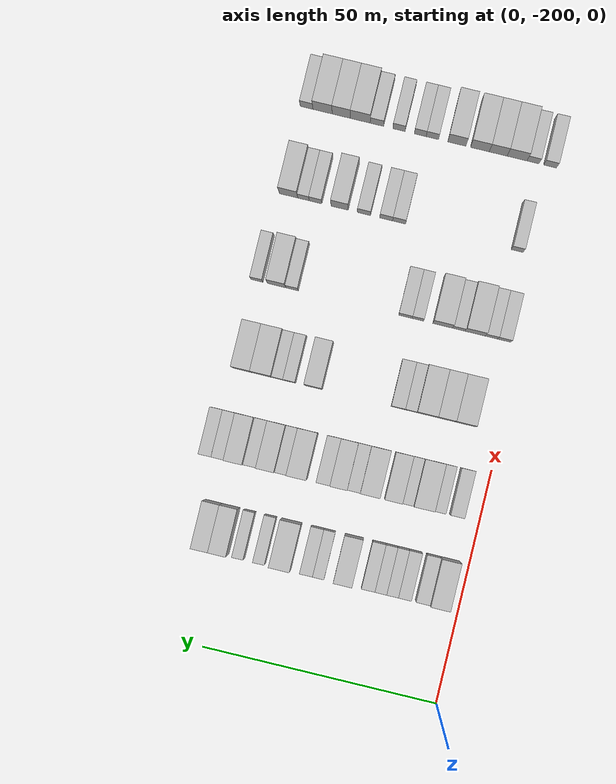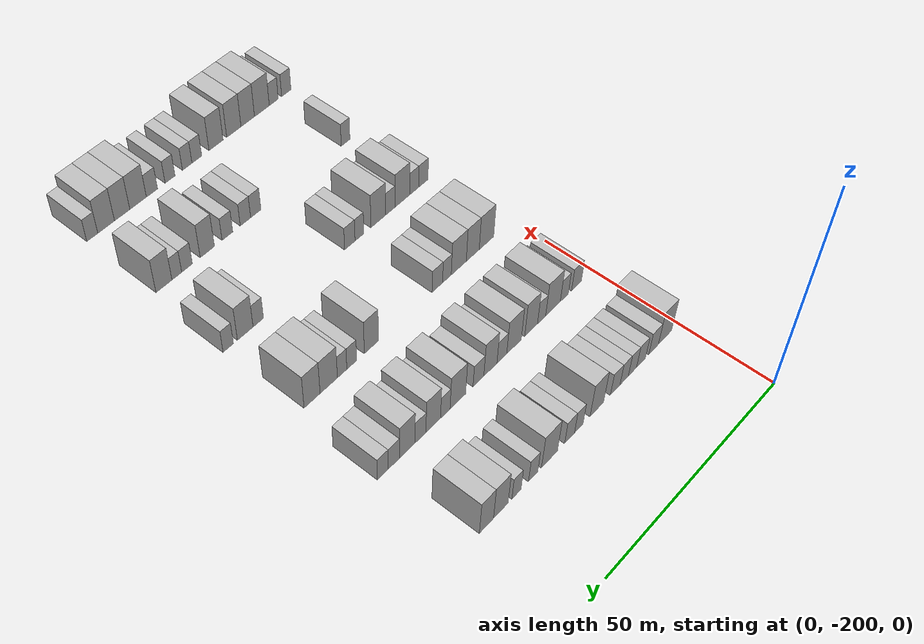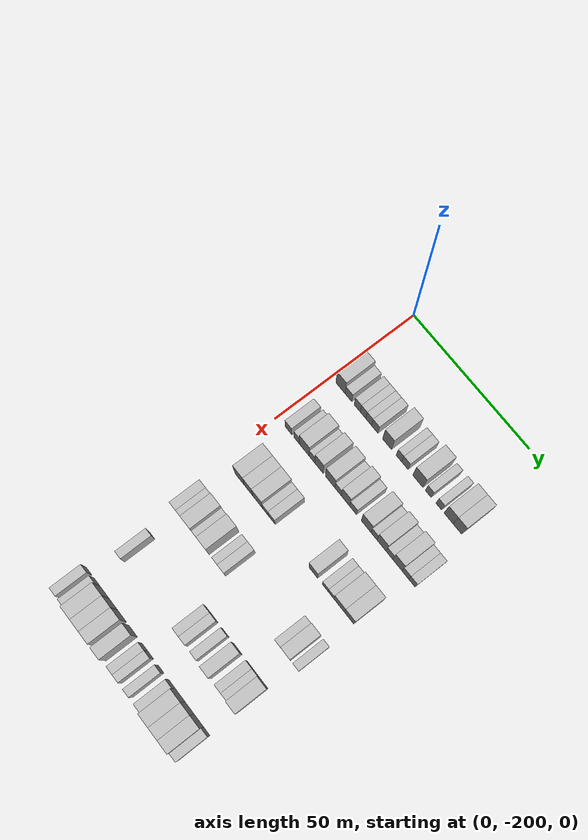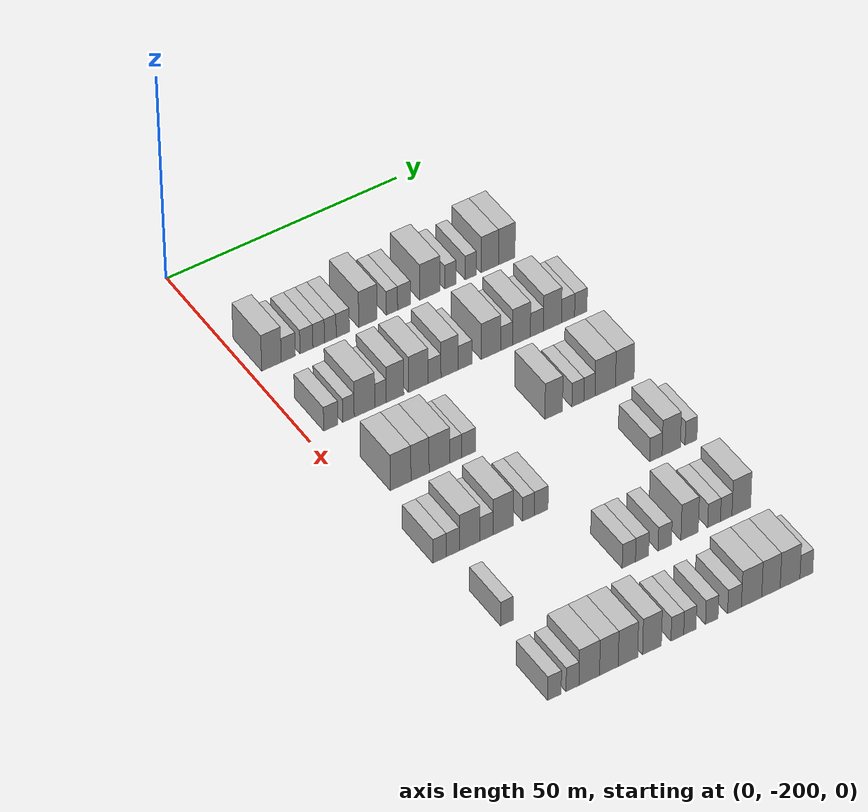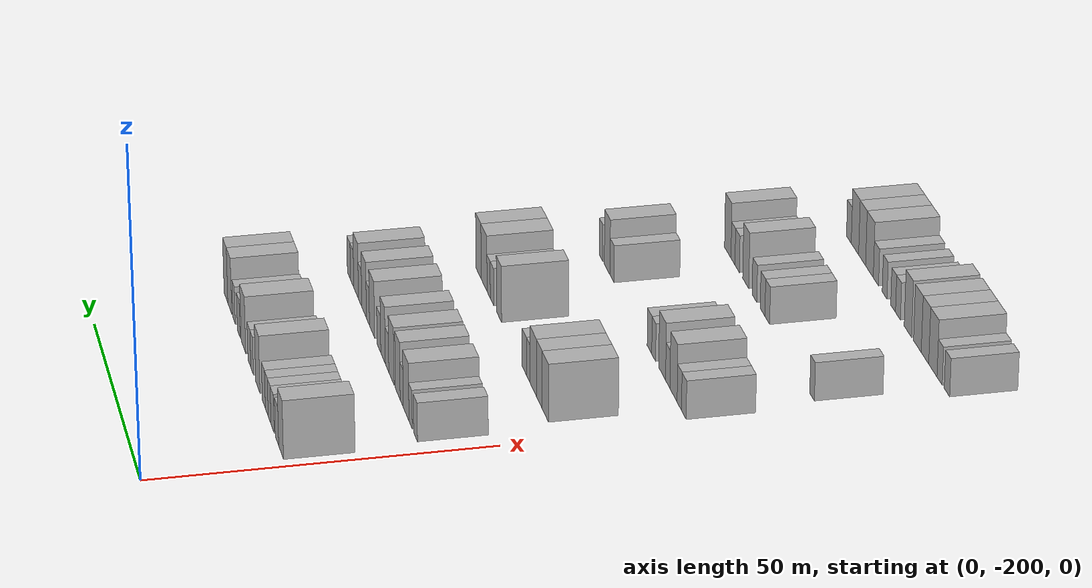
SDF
<sdf version="1.6">
 <world name="default">
  <model name="building_40">
   <static>1</static>
   <pose>25.0000 -195.7708 0 0.000000 0.000000 0.000000</pose>
   <link name="link">
    <pose>0 0 4.50 0 0 0</pose>
    <collision name="collision"><geometry><box><size>10.0000 4.1442 9.0000</size></box></geometry></collision>
    <visual name="visual">
     <cast_shadows>0</cast_shadows>
     <geometry><box><size>10.0000 4.1442 9.0000</size></box></geometry>
     <material>
      <script>
       <uri>model://HANNAS_wall/materials/scripts</uri>
       <uri>model://HANNAS_wall/materials/textures</uri>
       <name>vrc/HANNAS_wall</name>
      </script>
     </material>
    </visual>
   </link>
  </model>
  <model name="building_41">
   <static>1</static>
   <pose>25.0000 -192.2046 0 0.000000 0.000000 0.000000</pose>
   <link name="link">
    <pose>0 0 3.00 0 0 0</pose>
    <collision name="collision"><geometry><box><size>10.0000 2.9881 6.0000</size></box></geometry></collision>
    <visual name="visual">
     <cast_shadows>0</cast_shadows>
     <geometry><box><size>10.0000 2.9881 6.0000</size></box></geometry>
     <material>
      <script>
       <uri>model://HANNAS_wall/materials/scripts</uri>
       <uri>model://HANNAS_wall/materials/textures</uri>
       <name>vrc/HANNAS_wall</name>
      </script>
     </material>
    </visual>
   </link>
  </model>
  <model name="building_42">
   <static>1</static>
   <pose>25.0000 -188.3432 0 0.000000 0.000000 0.000000</pose>
   <link name="link">
    <pose>0 0 3.00 0 0 0</pose>
    <collision name="collision"><geometry><box><size>10.0000 2.7347 6.0000</size></box></geometry></collision>
    <visual name="visual">
     <cast_shadows>0</cast_shadows>
     <geometry><box><size>10.0000 2.7347 6.0000</size></box></geometry>
     <material>
      <script>
       <uri>model://HANNAS_wall/materials/scripts</uri>
       <uri>model://HANNAS_wall/materials/textures</uri>
       <name>vrc/HANNAS_wall</name>
      </script>
     </material>
    </visual>
   </link>
  </model>
  <model name="building_43">
   <static>1</static>
   <pose>25.0000 -185.7356 0 0.000000 0.000000 0.000000</pose>
   <link name="link">
    <pose>0 0 3.00 0 0 0</pose>
    <collision name="collision"><geometry><box><size>10.0000 2.4803 6.0000</size></box></geometry></collision>
    <visual name="visual">
     <cast_shadows>0</cast_shadows>
     <geometry><box><size>10.0000 2.4803 6.0000</size></box></geometry>
     <material>
      <script>
       <uri>model://HANNAS_wall/materials/scripts</uri>
       <uri>model://HANNAS_wall/materials/textures</uri>
       <name>vrc/HANNAS_wall</name>
      </script>
     </material>
    </visual>
   </link>
  </model>
  <model name="building_44">
   <static>1</static>
   <pose>25.0000 -183.2464 0 0.000000 0.000000 0.000000</pose>
   <link name="link">
    <pose>0 0 3.00 0 0 0</pose>
    <collision name="collision"><geometry><box><size>10.0000 2.4982 6.0000</size></box></geometry></collision>
    <visual name="visual">
     <cast_shadows>0</cast_shadows>
     <geometry><box><size>10.0000 2.4982 6.0000</size></box></geometry>
     <material>
      <script>
       <uri>model://HANNAS_wall/materials/scripts</uri>
       <uri>model://HANNAS_wall/materials/textures</uri>
       <name>vrc/HANNAS_wall</name>
      </script>
     </material>
    </visual>
   </link>
  </model>
  <model name="building_45">
   <static>1</static>
   <pose>25.0000 -180.5771 0 0.000000 0.000000 0.000000</pose>
   <link name="link">
    <pose>0 0 3.00 0 0 0</pose>
    <collision name="collision"><geometry><box><size>10.0000 2.8404 6.0000</size></box></geometry></collision>
    <visual name="visual">
     <cast_shadows>0</cast_shadows>
     <geometry><box><size>10.0000 2.8404 6.0000</size></box></geometry>
     <material>
      <script>
       <uri>model://HANNAS_wall/materials/scripts</uri>
       <uri>model://HANNAS_wall/materials/textures</uri>
       <name>vrc/HANNAS_wall</name>
      </script>
     </material>
    </visual>
   </link>
  </model>
  <model name="building_46">
   <static>1</static>
   <pose>25.0000 -175.1904 0 0.000000 0.000000 0.000000</pose>
   <link name="link">
    <pose>0 0 4.50 0 0 0</pose>
    <collision name="collision"><geometry><box><size>10.0000 3.9329 9.0000</size></box></geometry></collision>
    <visual name="visual">
     <cast_shadows>0</cast_shadows>
     <geometry><box><size>10.0000 3.9329 9.0000</size></box></geometry>
     <material>
      <script>
       <uri>model://HANNAS_wall/materials/scripts</uri>
       <uri>model://HANNAS_wall/materials/textures</uri>
       <name>vrc/HANNAS_wall</name>
      </script>
     </material>
    </visual>
   </link>
  </model>
  <model name="building_47">
   <static>1</static>
   <pose>25.0000 -170.0135 0 0.000000 0.000000 0.000000</pose>
   <link name="link">
    <pose>0 0 3.00 0 0 0</pose>
    <collision name="collision"><geometry><box><size>10.0000 2.4210 6.0000</size></box></geometry></collision>
    <visual name="visual">
     <cast_shadows>0</cast_shadows>
     <geometry><box><size>10.0000 2.4210 6.0000</size></box></geometry>
     <material>
      <script>
       <uri>model://HANNAS_wall/materials/scripts</uri>
       <uri>model://HANNAS_wall/materials/textures</uri>
       <name>vrc/HANNAS_wall</name>
      </script>
     </material>
    </visual>
   </link>
  </model>
  <model name="building_48">
   <static>1</static>
   <pose>25.0000 -167.4191 0 0.000000 0.000000 0.000000</pose>
   <link name="link">
    <pose>0 0 3.00 0 0 0</pose>
    <collision name="collision"><geometry><box><size>10.0000 2.7677 6.0000</size></box></geometry></collision>
    <visual name="visual">
     <cast_shadows>0</cast_shadows>
     <geometry><box><size>10.0000 2.7677 6.0000</size></box></geometry>
     <material>
      <script>
       <uri>model://HANNAS_wall/materials/scripts</uri>
       <uri>model://HANNAS_wall/materials/textures</uri>
       <name>vrc/HANNAS_wall</name>
      </script>
     </material>
    </visual>
   </link>
  </model>
  <model name="building_49">
   <static>1</static>
   <pose>25.0000 -161.8269 0 0.000000 0.000000 0.000000</pose>
   <link name="link">
    <pose>0 0 4.50 0 0 0</pose>
    <collision name="collision"><geometry><box><size>10.0000 4.4167 9.0000</size></box></geometry></collision>
    <visual name="visual">
     <cast_shadows>0</cast_shadows>
     <geometry><box><size>10.0000 4.4167 9.0000</size></box></geometry>
     <material>
      <script>
       <uri>model://HANNAS_wall/materials/scripts</uri>
       <uri>model://HANNAS_wall/materials/textures</uri>
       <name>vrc/HANNAS_wall</name>
      </script>
     </material>
    </visual>
   </link>
  </model>
  <model name="building_50">
   <static>1</static>
   <pose>25.0000 -157.3657 0 0.000000 0.000000 0.000000</pose>
   <link name="link">
    <pose>0 0 3.00 0 0 0</pose>
    <collision name="collision"><geometry><box><size>10.0000 2.5056 6.0000</size></box></geometry></collision>
    <visual name="visual">
     <cast_shadows>0</cast_shadows>
     <geometry><box><size>10.0000 2.5056 6.0000</size></box></geometry>
     <material>
      <script>
       <uri>model://HANNAS_wall/materials/scripts</uri>
       <uri>model://HANNAS_wall/materials/textures</uri>
       <name>vrc/HANNAS_wall</name>
      </script>
     </material>
    </visual>
   </link>
  </model>
  <model name="building_51">
   <static>1</static>
   <pose>25.0000 -152.8962 0 0.000000 0.000000 0.000000</pose>
   <link name="link">
    <pose>0 0 3.00 0 0 0</pose>
    <collision name="collision"><geometry><box><size>10.0000 2.4334 6.0000</size></box></geometry></collision>
    <visual name="visual">
     <cast_shadows>0</cast_shadows>
     <geometry><box><size>10.0000 2.4334 6.0000</size></box></geometry>
     <material>
      <script>
       <uri>model://HANNAS_wall/materials/scripts</uri>
       <uri>model://HANNAS_wall/materials/textures</uri>
       <name>vrc/HANNAS_wall</name>
      </script>
     </material>
    </visual>
   </link>
  </model>
  <model name="building_52">
   <static>1</static>
   <pose>25.0000 -148.7781 0 0.000000 0.000000 0.000000</pose>
   <link name="link">
    <pose>0 0 4.50 0 0 0</pose>
    <collision name="collision"><geometry><box><size>10.0000 3.8028 9.0000</size></box></geometry></collision>
    <visual name="visual">
     <cast_shadows>0</cast_shadows>
     <geometry><box><size>10.0000 3.8028 9.0000</size></box></geometry>
     <material>
      <script>
       <uri>model://HANNAS_wall/materials/scripts</uri>
       <uri>model://HANNAS_wall/materials/textures</uri>
       <name>vrc/HANNAS_wall</name>
      </script>
     </material>
    </visual>
   </link>
  </model>
  <model name="building_53">
   <static>1</static>
   <pose>25.0000 -145.0560 0 0.000000 0.000000 0.000000</pose>
   <link name="link">
    <pose>0 0 4.50 0 0 0</pose>
    <collision name="collision"><geometry><box><size>10.0000 3.6415 9.0000</size></box></geometry></collision>
    <visual name="visual">
     <cast_shadows>0</cast_shadows>
     <geometry><box><size>10.0000 3.6415 9.0000</size></box></geometry>
     <material>
      <script>
       <uri>model://HANNAS_wall/materials/scripts</uri>
       <uri>model://HANNAS_wall/materials/textures</uri>
       <name>vrc/HANNAS_wall</name>
      </script>
     </material>
    </visual>
   </link>
  </model>
  <model name="building_201">
   <static>1</static>
   <pose>44.0000 -194.9418 0 0.000000 0.000000 0.000000</pose>
   <link name="link">
    <pose>0 0 3.00 0 0 0</pose>
    <collision name="collision"><geometry><box><size>10.0000 2.9970 6.0000</size></box></geometry></collision>
    <visual name="visual">
     <cast_shadows>0</cast_shadows>
     <geometry><box><size>10.0000 2.9970 6.0000</size></box></geometry>
     <material>
      <script>
       <uri>model://HANNAS_wall/materials/scripts</uri>
       <uri>model://HANNAS_wall/materials/textures</uri>
       <name>vrc/HANNAS_wall</name>
      </script>
     </material>
    </visual>
   </link>
  </model>
  <model name="building_202">
   <static>1</static>
   <pose>44.0000 -191.2302 0 0.000000 0.000000 0.000000</pose>
   <link name="link">
    <pose>0 0 3.00 0 0 0</pose>
    <collision name="collision"><geometry><box><size>10.0000 2.4262 6.0000</size></box></geometry></collision>
    <visual name="visual">
     <cast_shadows>0</cast_shadows>
     <geometry><box><size>10.0000 2.4262 6.0000</size></box></geometry>
     <material>
      <script>
       <uri>model://HANNAS_wall/materials/scripts</uri>
       <uri>model://HANNAS_wall/materials/textures</uri>
       <name>vrc/HANNAS_wall</name>
      </script>
     </material>
    </visual>
   </link>
  </model>
  <model name="building_203">
   <static>1</static>
   <pose>44.0000 -187.8226 0 0.000000 0.000000 0.000000</pose>
   <link name="link">
    <pose>0 0 4.50 0 0 0</pose>
    <collision name="collision"><geometry><box><size>10.0000 4.3892 9.0000</size></box></geometry></collision>
    <visual name="visual">
     <cast_shadows>0</cast_shadows>
     <geometry><box><size>10.0000 4.3892 9.0000</size></box></geometry>
     <material>
      <script>
       <uri>model://HANNAS_wall/materials/scripts</uri>
       <uri>model://HANNAS_wall/materials/textures</uri>
       <name>vrc/HANNAS_wall</name>
      </script>
     </material>
    </visual>
   </link>
  </model>
  <model name="building_204">
   <static>1</static>
   <pose>44.0000 -184.4227 0 0.000000 0.000000 0.000000</pose>
   <link name="link">
    <pose>0 0 3.00 0 0 0</pose>
    <collision name="collision"><geometry><box><size>10.0000 2.4105 6.0000</size></box></geometry></collision>
    <visual name="visual">
     <cast_shadows>0</cast_shadows>
     <geometry><box><size>10.0000 2.4105 6.0000</size></box></geometry>
     <material>
      <script>
       <uri>model://HANNAS_wall/materials/scripts</uri>
       <uri>model://HANNAS_wall/materials/textures</uri>
       <name>vrc/HANNAS_wall</name>
      </script>
     </material>
    </visual>
   </link>
  </model>
  <model name="building_205">
   <static>1</static>
   <pose>44.0000 -181.3458 0 0.000000 0.000000 0.000000</pose>
   <link name="link">
    <pose>0 0 4.50 0 0 0</pose>
    <collision name="collision"><geometry><box><size>10.0000 3.7434 9.0000</size></box></geometry></collision>
    <visual name="visual">
     <cast_shadows>0</cast_shadows>
     <geometry><box><size>10.0000 3.7434 9.0000</size></box></geometry>
     <material>
      <script>
       <uri>model://HANNAS_wall/materials/scripts</uri>
       <uri>model://HANNAS_wall/materials/textures</uri>
       <name>vrc/HANNAS_wall</name>
      </script>
     </material>
    </visual>
   </link>
  </model>
  <model name="building_206">
   <static>1</static>
   <pose>44.0000 -176.3915 0 0.000000 0.000000 0.000000</pose>
   <link name="link">
    <pose>0 0 4.50 0 0 0</pose>
    <collision name="collision"><geometry><box><size>10.0000 4.1651 9.0000</size></box></geometry></collision>
    <visual name="visual">
     <cast_shadows>0</cast_shadows>
     <geometry><box><size>10.0000 4.1651 9.0000</size></box></geometry>
     <material>
      <script>
       <uri>model://HANNAS_wall/materials/scripts</uri>
       <uri>model://HANNAS_wall/materials/textures</uri>
       <name>vrc/HANNAS_wall</name>
      </script>
     </material>
    </visual>
   </link>
  </model>
  <model name="building_207">
   <static>1</static>
   <pose>44.0000 -172.9282 0 0.000000 0.000000 0.000000</pose>
   <link name="link">
    <pose>0 0 3.00 0 0 0</pose>
    <collision name="collision"><geometry><box><size>10.0000 2.7617 6.0000</size></box></geometry></collision>
    <visual name="visual">
     <cast_shadows>0</cast_shadows>
     <geometry><box><size>10.0000 2.7617 6.0000</size></box></geometry>
     <material>
      <script>
       <uri>model://HANNAS_wall/materials/scripts</uri>
       <uri>model://HANNAS_wall/materials/textures</uri>
       <name>vrc/HANNAS_wall</name>
      </script>
     </material>
    </visual>
   </link>
  </model>
  <model name="building_208">
   <static>1</static>
   <pose>44.0000 -169.7141 0 0.000000 0.000000 0.000000</pose>
   <link name="link">
    <pose>0 0 4.50 0 0 0</pose>
    <collision name="collision"><geometry><box><size>10.0000 3.6665 9.0000</size></box></geometry></collision>
    <visual name="visual">
     <cast_shadows>0</cast_shadows>
     <geometry><box><size>10.0000 3.6665 9.0000</size></box></geometry>
     <material>
      <script>
       <uri>model://HANNAS_wall/materials/scripts</uri>
       <uri>model://HANNAS_wall/materials/textures</uri>
       <name>vrc/HANNAS_wall</name>
      </script>
     </material>
    </visual>
   </link>
  </model>
  <model name="building_209">
   <static>1</static>
   <pose>44.0000 -166.3877 0 0.000000 0.000000 0.000000</pose>
   <link name="link">
    <pose>0 0 3.00 0 0 0</pose>
    <collision name="collision"><geometry><box><size>10.0000 2.9863 6.0000</size></box></geometry></collision>
    <visual name="visual">
     <cast_shadows>0</cast_shadows>
     <geometry><box><size>10.0000 2.9863 6.0000</size></box></geometry>
     <material>
      <script>
       <uri>model://HANNAS_wall/materials/scripts</uri>
       <uri>model://HANNAS_wall/materials/textures</uri>
       <name>vrc/HANNAS_wall</name>
      </script>
     </material>
    </visual>
   </link>
  </model>
  <model name="building_210">
   <static>1</static>
   <pose>44.0000 -160.7847 0 0.000000 0.000000 0.000000</pose>
   <link name="link">
    <pose>0 0 4.50 0 0 0</pose>
    <collision name="collision"><geometry><box><size>10.0000 4.2197 9.0000</size></box></geometry></collision>
    <visual name="visual">
     <cast_shadows>0</cast_shadows>
     <geometry><box><size>10.0000 4.2197 9.0000</size></box></geometry>
     <material>
      <script>
       <uri>model://HANNAS_wall/materials/scripts</uri>
       <uri>model://HANNAS_wall/materials/textures</uri>
       <name>vrc/HANNAS_wall</name>
      </script>
     </material>
    </visual>
   </link>
  </model>
  <model name="building_211">
   <static>1</static>
   <pose>44.0000 -157.4006 0 0.000000 0.000000 0.000000</pose>
   <link name="link">
    <pose>0 0 3.00 0 0 0</pose>
    <collision name="collision"><geometry><box><size>10.0000 2.5484 6.0000</size></box></geometry></collision>
    <visual name="visual">
     <cast_shadows>0</cast_shadows>
     <geometry><box><size>10.0000 2.5484 6.0000</size></box></geometry>
     <material>
      <script>
       <uri>model://HANNAS_wall/materials/scripts</uri>
       <uri>model://HANNAS_wall/materials/textures</uri>
       <name>vrc/HANNAS_wall</name>
      </script>
     </material>
    </visual>
   </link>
  </model>
  <model name="building_212">
   <static>1</static>
   <pose>44.0000 -154.1972 0 0.000000 0.000000 0.000000</pose>
   <link name="link">
    <pose>0 0 4.50 0 0 0</pose>
    <collision name="collision"><geometry><box><size>10.0000 3.8584 9.0000</size></box></geometry></collision>
    <visual name="visual">
     <cast_shadows>0</cast_shadows>
     <geometry><box><size>10.0000 3.8584 9.0000</size></box></geometry>
     <material>
      <script>
       <uri>model://HANNAS_wall/materials/scripts</uri>
       <uri>model://HANNAS_wall/materials/textures</uri>
       <name>vrc/HANNAS_wall</name>
      </script>
     </material>
    </visual>
   </link>
  </model>
  <model name="building_213">
   <static>1</static>
   <pose>44.0000 -150.8430 0 0.000000 0.000000 0.000000</pose>
   <link name="link">
    <pose>0 0 3.00 0 0 0</pose>
    <collision name="collision"><geometry><box><size>10.0000 2.8500 6.0000</size></box></geometry></collision>
    <visual name="visual">
     <cast_shadows>0</cast_shadows>
     <geometry><box><size>10.0000 2.8500 6.0000</size></box></geometry>
     <material>
      <script>
       <uri>model://HANNAS_wall/materials/scripts</uri>
       <uri>model://HANNAS_wall/materials/textures</uri>
       <name>vrc/HANNAS_wall</name>
      </script>
     </material>
    </visual>
   </link>
  </model>
  <model name="building_214">
   <static>1</static>
   <pose>44.0000 -147.4449 0 0.000000 0.000000 0.000000</pose>
   <link name="link">
    <pose>0 0 4.50 0 0 0</pose>
    <collision name="collision"><geometry><box><size>10.0000 3.9461 9.0000</size></box></geometry></collision>
    <visual name="visual">
     <cast_shadows>0</cast_shadows>
     <geometry><box><size>10.0000 3.9461 9.0000</size></box></geometry>
     <material>
      <script>
       <uri>model://HANNAS_wall/materials/scripts</uri>
       <uri>model://HANNAS_wall/materials/textures</uri>
       <name>vrc/HANNAS_wall</name>
      </script>
     </material>
    </visual>
   </link>
  </model>
  <model name="building_215">
   <static>1</static>
   <pose>44.0000 -144.0633 0 0.000000 0.000000 0.000000</pose>
   <link name="link">
    <pose>0 0 3.00 0 0 0</pose>
    <collision name="collision"><geometry><box><size>10.0000 2.8171 6.0000</size></box></geometry></collision>
    <visual name="visual">
     <cast_shadows>0</cast_shadows>
     <geometry><box><size>10.0000 2.8171 6.0000</size></box></geometry>
     <material>
      <script>
       <uri>model://HANNAS_wall/materials/scripts</uri>
       <uri>model://HANNAS_wall/materials/textures</uri>
       <name>vrc/HANNAS_wall</name>
      </script>
     </material>
    </visual>
   </link>
  </model>
  <model name="building_216">
   <static>1</static>
   <pose>44.0000 -141.2925 0 0.000000 0.000000 0.000000</pose>
   <link name="link">
    <pose>0 0 3.00 0 0 0</pose>
    <collision name="collision"><geometry><box><size>10.0000 2.7244 6.0000</size></box></geometry></collision>
    <visual name="visual">
     <cast_shadows>0</cast_shadows>
     <geometry><box><size>10.0000 2.7244 6.0000</size></box></geometry>
     <material>
      <script>
       <uri>model://HANNAS_wall/materials/scripts</uri>
       <uri>model://HANNAS_wall/materials/textures</uri>
       <name>vrc/HANNAS_wall</name>
      </script>
     </material>
    </visual>
   </link>
  </model>
  <model name="building_391">
   <static>1</static>
   <pose>63.0000 -192.1657 0 0.000000 0.000000 0.000000</pose>
   <link name="link">
    <pose>0 0 4.50 0 0 0</pose>
    <collision name="collision"><geometry><box><size>10.0000 4.3341 9.0000</size></box></geometry></collision>
    <visual name="visual">
     <cast_shadows>0</cast_shadows>
     <geometry><box><size>10.0000 4.3341 9.0000</size></box></geometry>
     <material>
      <script>
       <uri>model://HANNAS_wall/materials/scripts</uri>
       <uri>model://HANNAS_wall/materials/textures</uri>
       <name>vrc/HANNAS_wall</name>
      </script>
     </material>
    </visual>
   </link>
  </model>
  <model name="building_392">
   <static>1</static>
   <pose>63.0000 -188.0913 0 0.000000 0.000000 0.000000</pose>
   <link name="link">
    <pose>0 0 4.50 0 0 0</pose>
    <collision name="collision"><geometry><box><size>10.0000 3.8147 9.0000</size></box></geometry></collision>
    <visual name="visual">
     <cast_shadows>0</cast_shadows>
     <geometry><box><size>10.0000 3.8147 9.0000</size></box></geometry>
     <material>
      <script>
       <uri>model://HANNAS_wall/materials/scripts</uri>
       <uri>model://HANNAS_wall/materials/textures</uri>
       <name>vrc/HANNAS_wall</name>
      </script>
     </material>
    </visual>
   </link>
  </model>
  <model name="building_393">
   <static>1</static>
   <pose>63.0000 -183.9899 0 0.000000 0.000000 0.000000</pose>
   <link name="link">
    <pose>0 0 4.50 0 0 0</pose>
    <collision name="collision"><geometry><box><size>10.0000 4.3881 9.0000</size></box></geometry></collision>
    <visual name="visual">
     <cast_shadows>0</cast_shadows>
     <geometry><box><size>10.0000 4.3881 9.0000</size></box></geometry>
     <material>
      <script>
       <uri>model://HANNAS_wall/materials/scripts</uri>
       <uri>model://HANNAS_wall/materials/textures</uri>
       <name>vrc/HANNAS_wall</name>
      </script>
     </material>
    </visual>
   </link>
  </model>
  <model name="building_394">
   <static>1</static>
   <pose>63.0000 -180.5504 0 0.000000 0.000000 0.000000</pose>
   <link name="link">
    <pose>0 0 3.00 0 0 0</pose>
    <collision name="collision"><geometry><box><size>10.0000 2.4908 6.0000</size></box></geometry></collision>
    <visual name="visual">
     <cast_shadows>0</cast_shadows>
     <geometry><box><size>10.0000 2.4908 6.0000</size></box></geometry>
     <material>
      <script>
       <uri>model://HANNAS_wall/materials/scripts</uri>
       <uri>model://HANNAS_wall/materials/textures</uri>
       <name>vrc/HANNAS_wall</name>
      </script>
     </material>
    </visual>
   </link>
  </model>
  <model name="building_395">
   <static>1</static>
   <pose>63.0000 -177.8088 0 0.000000 0.000000 0.000000</pose>
   <link name="link">
    <pose>0 0 3.00 0 0 0</pose>
    <collision name="collision"><geometry><box><size>10.0000 2.9925 6.0000</size></box></geometry></collision>
    <visual name="visual">
     <cast_shadows>0</cast_shadows>
     <geometry><box><size>10.0000 2.9925 6.0000</size></box></geometry>
     <material>
      <script>
       <uri>model://HANNAS_wall/materials/scripts</uri>
       <uri>model://HANNAS_wall/materials/textures</uri>
       <name>vrc/HANNAS_wall</name>
      </script>
     </material>
    </visual>
   </link>
  </model>
  <model name="building_396">
   <static>1</static>
   <pose>63.0000 -159.6666 0 0.000000 0.000000 0.000000</pose>
   <link name="link">
    <pose>0 0 4.50 0 0 0</pose>
    <collision name="collision"><geometry><box><size>10.0000 3.7639 9.0000</size></box></geometry></collision>
    <visual name="visual">
     <cast_shadows>0</cast_shadows>
     <geometry><box><size>10.0000 3.7639 9.0000</size></box></geometry>
     <material>
      <script>
       <uri>model://HANNAS_wall/materials/scripts</uri>
       <uri>model://HANNAS_wall/materials/textures</uri>
       <name>vrc/HANNAS_wall</name>
      </script>
     </material>
    </visual>
   </link>
  </model>
  <model name="building_397">
   <static>1</static>
   <pose>63.0000 -154.5009 0 0.000000 0.000000 0.000000</pose>
   <link name="link">
    <pose>0 0 3.00 0 0 0</pose>
    <collision name="collision"><geometry><box><size>10.0000 2.5675 6.0000</size></box></geometry></collision>
    <visual name="visual">
     <cast_shadows>0</cast_shadows>
     <geometry><box><size>10.0000 2.5675 6.0000</size></box></geometry>
     <material>
      <script>
       <uri>model://HANNAS_wall/materials/scripts</uri>
       <uri>model://HANNAS_wall/materials/textures</uri>
       <name>vrc/HANNAS_wall</name>
      </script>
     </material>
    </visual>
   </link>
  </model>
  <model name="building_398">
   <static>1</static>
   <pose>63.0000 -152.0026 0 0.000000 0.000000 0.000000</pose>
   <link name="link">
    <pose>0 0 3.00 0 0 0</pose>
    <collision name="collision"><geometry><box><size>10.0000 2.4289 6.0000</size></box></geometry></collision>
    <visual name="visual">
     <cast_shadows>0</cast_shadows>
     <geometry><box><size>10.0000 2.4289 6.0000</size></box></geometry>
     <material>
      <script>
       <uri>model://HANNAS_wall/materials/scripts</uri>
       <uri>model://HANNAS_wall/materials/textures</uri>
       <name>vrc/HANNAS_wall</name>
      </script>
     </material>
    </visual>
   </link>
  </model>
  <model name="building_399">
   <static>1</static>
   <pose>63.0000 -148.5722 0 0.000000 0.000000 0.000000</pose>
   <link name="link">
    <pose>0 0 4.50 0 0 0</pose>
    <collision name="collision"><geometry><box><size>10.0000 4.4319 9.0000</size></box></geometry></collision>
    <visual name="visual">
     <cast_shadows>0</cast_shadows>
     <geometry><box><size>10.0000 4.4319 9.0000</size></box></geometry>
     <material>
      <script>
       <uri>model://HANNAS_wall/materials/scripts</uri>
       <uri>model://HANNAS_wall/materials/textures</uri>
       <name>vrc/HANNAS_wall</name>
      </script>
     </material>
    </visual>
   </link>
  </model>
  <model name="building_400">
   <static>1</static>
   <pose>63.0000 -144.3445 0 0.000000 0.000000 0.000000</pose>
   <link name="link">
    <pose>0 0 4.50 0 0 0</pose>
    <collision name="collision"><geometry><box><size>10.0000 4.0235 9.0000</size></box></geometry></collision>
    <visual name="visual">
     <cast_shadows>0</cast_shadows>
     <geometry><box><size>10.0000 4.0235 9.0000</size></box></geometry>
     <material>
      <script>
       <uri>model://HANNAS_wall/materials/scripts</uri>
       <uri>model://HANNAS_wall/materials/textures</uri>
       <name>vrc/HANNAS_wall</name>
      </script>
     </material>
    </visual>
   </link>
  </model>
  <model name="building_552">
   <static>1</static>
   <pose>82.0000 -196.0896 0 0.000000 0.000000 0.000000</pose>
   <link name="link">
    <pose>0 0 3.00 0 0 0</pose>
    <collision name="collision"><geometry><box><size>10.0000 2.8147 6.0000</size></box></geometry></collision>
    <visual name="visual">
     <cast_shadows>0</cast_shadows>
     <geometry><box><size>10.0000 2.8147 6.0000</size></box></geometry>
     <material>
      <script>
       <uri>model://HANNAS_wall/materials/scripts</uri>
       <uri>model://HANNAS_wall/materials/textures</uri>
       <name>vrc/HANNAS_wall</name>
      </script>
     </material>
    </visual>
   </link>
  </model>
  <model name="building_553">
   <static>1</static>
   <pose>82.0000 -193.3389 0 0.000000 0.000000 0.000000</pose>
   <link name="link">
    <pose>0 0 3.00 0 0 0</pose>
    <collision name="collision"><geometry><box><size>10.0000 2.6866 6.0000</size></box></geometry></collision>
    <visual name="visual">
     <cast_shadows>0</cast_shadows>
     <geometry><box><size>10.0000 2.6866 6.0000</size></box></geometry>
     <material>
      <script>
       <uri>model://HANNAS_wall/materials/scripts</uri>
       <uri>model://HANNAS_wall/materials/textures</uri>
       <name>vrc/HANNAS_wall</name>
      </script>
     </material>
    </visual>
   </link>
  </model>
  <model name="building_554">
   <static>1</static>
   <pose>82.0000 -189.8306 0 0.000000 0.000000 0.000000</pose>
   <link name="link">
    <pose>0 0 4.50 0 0 0</pose>
    <collision name="collision"><geometry><box><size>10.0000 4.3301 9.0000</size></box></geometry></collision>
    <visual name="visual">
     <cast_shadows>0</cast_shadows>
     <geometry><box><size>10.0000 4.3301 9.0000</size></box></geometry>
     <material>
      <script>
       <uri>model://HANNAS_wall/materials/scripts</uri>
       <uri>model://HANNAS_wall/materials/textures</uri>
       <name>vrc/HANNAS_wall</name>
      </script>
     </material>
    </visual>
   </link>
  </model>
  <model name="building_555">
   <static>1</static>
   <pose>82.0000 -186.3120 0 0.000000 0.000000 0.000000</pose>
   <link name="link">
    <pose>0 0 3.00 0 0 0</pose>
    <collision name="collision"><geometry><box><size>10.0000 2.7070 6.0000</size></box></geometry></collision>
    <visual name="visual">
     <cast_shadows>0</cast_shadows>
     <geometry><box><size>10.0000 2.7070 6.0000</size></box></geometry>
     <material>
      <script>
       <uri>model://HANNAS_wall/materials/scripts</uri>
       <uri>model://HANNAS_wall/materials/textures</uri>
       <name>vrc/HANNAS_wall</name>
      </script>
     </material>
    </visual>
   </link>
  </model>
  <model name="building_556">
   <static>1</static>
   <pose>82.0000 -182.8403 0 0.000000 0.000000 0.000000</pose>
   <link name="link">
    <pose>0 0 4.50 0 0 0</pose>
    <collision name="collision"><geometry><box><size>10.0000 4.2365 9.0000</size></box></geometry></collision>
    <visual name="visual">
     <cast_shadows>0</cast_shadows>
     <geometry><box><size>10.0000 4.2365 9.0000</size></box></geometry>
     <material>
      <script>
       <uri>model://HANNAS_wall/materials/scripts</uri>
       <uri>model://HANNAS_wall/materials/textures</uri>
       <name>vrc/HANNAS_wall</name>
      </script>
     </material>
    </visual>
   </link>
  </model>
  <model name="building_557">
   <static>1</static>
   <pose>82.0000 -177.4921 0 0.000000 0.000000 0.000000</pose>
   <link name="link">
    <pose>0 0 3.00 0 0 0</pose>
    <collision name="collision"><geometry><box><size>10.0000 2.4600 6.0000</size></box></geometry></collision>
    <visual name="visual">
     <cast_shadows>0</cast_shadows>
     <geometry><box><size>10.0000 2.4600 6.0000</size></box></geometry>
     <material>
      <script>
       <uri>model://HANNAS_wall/materials/scripts</uri>
       <uri>model://HANNAS_wall/materials/textures</uri>
       <name>vrc/HANNAS_wall</name>
      </script>
     </material>
    </visual>
   </link>
  </model>
  <model name="building_558">
   <static>1</static>
   <pose>82.0000 -174.8116 0 0.000000 0.000000 0.000000</pose>
   <link name="link">
    <pose>0 0 3.00 0 0 0</pose>
    <collision name="collision"><geometry><box><size>10.0000 2.9010 6.0000</size></box></geometry></collision>
    <visual name="visual">
     <cast_shadows>0</cast_shadows>
     <geometry><box><size>10.0000 2.9010 6.0000</size></box></geometry>
     <material>
      <script>
       <uri>model://HANNAS_wall/materials/scripts</uri>
       <uri>model://HANNAS_wall/materials/textures</uri>
       <name>vrc/HANNAS_wall</name>
      </script>
     </material>
    </visual>
   </link>
  </model>
  <model name="building_559">
   <static>1</static>
   <pose>82.0000 -150.3761 0 0.000000 0.000000 0.000000</pose>
   <link name="link">
    <pose>0 0 3.00 0 0 0</pose>
    <collision name="collision"><geometry><box><size>10.0000 2.6566 6.0000</size></box></geometry></collision>
    <visual name="visual">
     <cast_shadows>0</cast_shadows>
     <geometry><box><size>10.0000 2.6566 6.0000</size></box></geometry>
     <material>
      <script>
       <uri>model://HANNAS_wall/materials/scripts</uri>
       <uri>model://HANNAS_wall/materials/textures</uri>
       <name>vrc/HANNAS_wall</name>
      </script>
     </material>
    </visual>
   </link>
  </model>
  <model name="building_560">
   <static>1</static>
   <pose>82.0000 -147.0719 0 0.000000 0.000000 0.000000</pose>
   <link name="link">
    <pose>0 0 4.50 0 0 0</pose>
    <collision name="collision"><geometry><box><size>10.0000 3.9518 9.0000</size></box></geometry></collision>
    <visual name="visual">
     <cast_shadows>0</cast_shadows>
     <geometry><box><size>10.0000 3.9518 9.0000</size></box></geometry>
     <material>
      <script>
       <uri>model://HANNAS_wall/materials/scripts</uri>
       <uri>model://HANNAS_wall/materials/textures</uri>
       <name>vrc/HANNAS_wall</name>
      </script>
     </material>
    </visual>
   </link>
  </model>
  <model name="building_561">
   <static>1</static>
   <pose>82.0000 -142.8100 0 0.000000 0.000000 0.000000</pose>
   <link name="link">
    <pose>0 0 3.00 0 0 0</pose>
    <collision name="collision"><geometry><box><size>10.0000 2.5720 6.0000</size></box></geometry></collision>
    <visual name="visual">
     <cast_shadows>0</cast_shadows>
     <geometry><box><size>10.0000 2.5720 6.0000</size></box></geometry>
     <material>
      <script>
       <uri>model://HANNAS_wall/materials/scripts</uri>
       <uri>model://HANNAS_wall/materials/textures</uri>
       <name>vrc/HANNAS_wall</name>
      </script>
     </material>
    </visual>
   </link>
  </model>
  <model name="building_706">
   <static>1</static>
   <pose>101.0000 -194.3641 0 0.000000 0.000000 0.000000</pose>
   <link name="link">
    <pose>0 0 3.00 0 0 0</pose>
    <collision name="collision"><geometry><box><size>10.0000 2.5706 6.0000</size></box></geometry></collision>
    <visual name="visual">
     <cast_shadows>0</cast_shadows>
     <geometry><box><size>10.0000 2.5706 6.0000</size></box></geometry>
     <material>
      <script>
       <uri>model://HANNAS_wall/materials/scripts</uri>
       <uri>model://HANNAS_wall/materials/textures</uri>
       <name>vrc/HANNAS_wall</name>
      </script>
     </material>
    </visual>
   </link>
  </model>
  <model name="building_707">
   <static>1</static>
   <pose>101.0000 -168.8804 0 0.000000 0.000000 0.000000</pose>
   <link name="link">
    <pose>0 0 3.00 0 0 0</pose>
    <collision name="collision"><geometry><box><size>10.0000 2.7989 6.0000</size></box></geometry></collision>
    <visual name="visual">
     <cast_shadows>0</cast_shadows>
     <geometry><box><size>10.0000 2.7989 6.0000</size></box></geometry>
     <material>
      <script>
       <uri>model://HANNAS_wall/materials/scripts</uri>
       <uri>model://HANNAS_wall/materials/textures</uri>
       <name>vrc/HANNAS_wall</name>
      </script>
     </material>
    </visual>
   </link>
  </model>
  <model name="building_708">
   <static>1</static>
   <pose>101.0000 -166.0876 0 0.000000 0.000000 0.000000</pose>
   <link name="link">
    <pose>0 0 3.00 0 0 0</pose>
    <collision name="collision"><geometry><box><size>10.0000 2.7867 6.0000</size></box></geometry></collision>
    <visual name="visual">
     <cast_shadows>0</cast_shadows>
     <geometry><box><size>10.0000 2.7867 6.0000</size></box></geometry>
     <material>
      <script>
       <uri>model://HANNAS_wall/materials/scripts</uri>
       <uri>model://HANNAS_wall/materials/textures</uri>
       <name>vrc/HANNAS_wall</name>
      </script>
     </material>
    </visual>
   </link>
  </model>
  <model name="building_709">
   <static>1</static>
   <pose>101.0000 -161.2784 0 0.000000 0.000000 0.000000</pose>
   <link name="link">
    <pose>0 0 3.00 0 0 0</pose>
    <collision name="collision"><geometry><box><size>10.0000 2.8318 6.0000</size></box></geometry></collision>
    <visual name="visual">
     <cast_shadows>0</cast_shadows>
     <geometry><box><size>10.0000 2.8318 6.0000</size></box></geometry>
     <material>
      <script>
       <uri>model://HANNAS_wall/materials/scripts</uri>
       <uri>model://HANNAS_wall/materials/textures</uri>
       <name>vrc/HANNAS_wall</name>
      </script>
     </material>
    </visual>
   </link>
  </model>
  <model name="building_710">
   <static>1</static>
   <pose>101.0000 -156.0100 0 0.000000 0.000000 0.000000</pose>
   <link name="link">
    <pose>0 0 4.50 0 0 0</pose>
    <collision name="collision"><geometry><box><size>10.0000 3.7051 9.0000</size></box></geometry></collision>
    <visual name="visual">
     <cast_shadows>0</cast_shadows>
     <geometry><box><size>10.0000 3.7051 9.0000</size></box></geometry>
     <material>
      <script>
       <uri>model://HANNAS_wall/materials/scripts</uri>
       <uri>model://HANNAS_wall/materials/textures</uri>
       <name>vrc/HANNAS_wall</name>
      </script>
     </material>
    </visual>
   </link>
  </model>
  <model name="building_711">
   <static>1</static>
   <pose>101.0000 -150.7959 0 0.000000 0.000000 0.000000</pose>
   <link name="link">
    <pose>0 0 3.00 0 0 0</pose>
    <collision name="collision"><geometry><box><size>10.0000 2.7231 6.0000</size></box></geometry></collision>
    <visual name="visual">
     <cast_shadows>0</cast_shadows>
     <geometry><box><size>10.0000 2.7231 6.0000</size></box></geometry>
     <material>
      <script>
       <uri>model://HANNAS_wall/materials/scripts</uri>
       <uri>model://HANNAS_wall/materials/textures</uri>
       <name>vrc/HANNAS_wall</name>
      </script>
     </material>
    </visual>
   </link>
  </model>
  <model name="building_712">
   <static>1</static>
   <pose>101.0000 -148.2036 0 0.000000 0.000000 0.000000</pose>
   <link name="link">
    <pose>0 0 3.00 0 0 0</pose>
    <collision name="collision"><geometry><box><size>10.0000 2.4614 6.0000</size></box></geometry></collision>
    <visual name="visual">
     <cast_shadows>0</cast_shadows>
     <geometry><box><size>10.0000 2.4614 6.0000</size></box></geometry>
     <material>
      <script>
       <uri>model://HANNAS_wall/materials/scripts</uri>
       <uri>model://HANNAS_wall/materials/textures</uri>
       <name>vrc/HANNAS_wall</name>
      </script>
     </material>
    </visual>
   </link>
  </model>
  <model name="building_713">
   <static>1</static>
   <pose>101.0000 -144.9752 0 0.000000 0.000000 0.000000</pose>
   <link name="link">
    <pose>0 0 4.50 0 0 0</pose>
    <collision name="collision"><geometry><box><size>10.0000 3.9954 9.0000</size></box></geometry></collision>
    <visual name="visual">
     <cast_shadows>0</cast_shadows>
     <geometry><box><size>10.0000 3.9954 9.0000</size></box></geometry>
     <material>
      <script>
       <uri>model://HANNAS_wall/materials/scripts</uri>
       <uri>model://HANNAS_wall/materials/textures</uri>
       <name>vrc/HANNAS_wall</name>
      </script>
     </material>
    </visual>
   </link>
  </model>
  <model name="building_877">
   <static>1</static>
   <pose>120.0000 -196.9476 0 0.000000 0.000000 0.000000</pose>
   <link name="link">
    <pose>0 0 3.00 0 0 0</pose>
    <collision name="collision"><geometry><box><size>10.0000 2.7680 6.0000</size></box></geometry></collision>
    <visual name="visual">
     <cast_shadows>0</cast_shadows>
     <geometry><box><size>10.0000 2.7680 6.0000</size></box></geometry>
     <material>
      <script>
       <uri>model://HANNAS_wall/materials/scripts</uri>
       <uri>model://HANNAS_wall/materials/textures</uri>
       <name>vrc/HANNAS_wall</name>
      </script>
     </material>
    </visual>
   </link>
  </model>
  <model name="building_878">
   <static>1</static>
   <pose>120.0000 -193.2447 0 0.000000 0.000000 0.000000</pose>
   <link name="link">
    <pose>0 0 3.00 0 0 0</pose>
    <collision name="collision"><geometry><box><size>10.0000 2.6379 6.0000</size></box></geometry></collision>
    <visual name="visual">
     <cast_shadows>0</cast_shadows>
     <geometry><box><size>10.0000 2.6379 6.0000</size></box></geometry>
     <material>
      <script>
       <uri>model://HANNAS_wall/materials/scripts</uri>
       <uri>model://HANNAS_wall/materials/textures</uri>
       <name>vrc/HANNAS_wall</name>
      </script>
     </material>
    </visual>
   </link>
  </model>
  <model name="building_879">
   <static>1</static>
   <pose>120.0000 -189.7864 0 0.000000 0.000000 0.000000</pose>
   <link name="link">
    <pose>0 0 4.50 0 0 0</pose>
    <collision name="collision"><geometry><box><size>10.0000 4.2786 9.0000</size></box></geometry></collision>
    <visual name="visual">
     <cast_shadows>0</cast_shadows>
     <geometry><box><size>10.0000 4.2786 9.0000</size></box></geometry>
     <material>
      <script>
       <uri>model://HANNAS_wall/materials/scripts</uri>
       <uri>model://HANNAS_wall/materials/textures</uri>
       <name>vrc/HANNAS_wall</name>
      </script>
     </material>
    </visual>
   </link>
  </model>
  <model name="building_880">
   <static>1</static>
   <pose>120.0000 -185.7138 0 0.000000 0.000000 0.000000</pose>
   <link name="link">
    <pose>0 0 4.50 0 0 0</pose>
    <collision name="collision"><geometry><box><size>10.0000 3.8665 9.0000</size></box></geometry></collision>
    <visual name="visual">
     <cast_shadows>0</cast_shadows>
     <geometry><box><size>10.0000 3.8665 9.0000</size></box></geometry>
     <material>
      <script>
       <uri>model://HANNAS_wall/materials/scripts</uri>
       <uri>model://HANNAS_wall/materials/textures</uri>
       <name>vrc/HANNAS_wall</name>
      </script>
     </material>
    </visual>
   </link>
  </model>
  <model name="building_881">
   <static>1</static>
   <pose>120.0000 -181.7578 0 0.000000 0.000000 0.000000</pose>
   <link name="link">
    <pose>0 0 4.50 0 0 0</pose>
    <collision name="collision"><geometry><box><size>10.0000 4.0456 9.0000</size></box></geometry></collision>
    <visual name="visual">
     <cast_shadows>0</cast_shadows>
     <geometry><box><size>10.0000 4.0456 9.0000</size></box></geometry>
     <material>
      <script>
       <uri>model://HANNAS_wall/materials/scripts</uri>
       <uri>model://HANNAS_wall/materials/textures</uri>
       <name>vrc/HANNAS_wall</name>
      </script>
     </material>
    </visual>
   </link>
  </model>
  <model name="building_882">
   <static>1</static>
   <pose>120.0000 -176.7708 0 0.000000 0.000000 0.000000</pose>
   <link name="link">
    <pose>0 0 4.50 0 0 0</pose>
    <collision name="collision"><geometry><box><size>10.0000 3.9284 9.0000</size></box></geometry></collision>
    <visual name="visual">
     <cast_shadows>0</cast_shadows>
     <geometry><box><size>10.0000 3.9284 9.0000</size></box></geometry>
     <material>
      <script>
       <uri>model://HANNAS_wall/materials/scripts</uri>
       <uri>model://HANNAS_wall/materials/textures</uri>
       <name>vrc/HANNAS_wall</name>
      </script>
     </material>
    </visual>
   </link>
  </model>
  <model name="building_883">
   <static>1</static>
   <pose>120.0000 -171.4738 0 0.000000 0.000000 0.000000</pose>
   <link name="link">
    <pose>0 0 3.00 0 0 0</pose>
    <collision name="collision"><geometry><box><size>10.0000 2.6656 6.0000</size></box></geometry></collision>
    <visual name="visual">
     <cast_shadows>0</cast_shadows>
     <geometry><box><size>10.0000 2.6656 6.0000</size></box></geometry>
     <material>
      <script>
       <uri>model://HANNAS_wall/materials/scripts</uri>
       <uri>model://HANNAS_wall/materials/textures</uri>
       <name>vrc/HANNAS_wall</name>
      </script>
     </material>
    </visual>
   </link>
  </model>
  <model name="building_884">
   <static>1</static>
   <pose>120.0000 -168.8553 0 0.000000 0.000000 0.000000</pose>
   <link name="link">
    <pose>0 0 3.00 0 0 0</pose>
    <collision name="collision"><geometry><box><size>10.0000 2.5715 6.0000</size></box></geometry></collision>
    <visual name="visual">
     <cast_shadows>0</cast_shadows>
     <geometry><box><size>10.0000 2.5715 6.0000</size></box></geometry>
     <material>
      <script>
       <uri>model://HANNAS_wall/materials/scripts</uri>
       <uri>model://HANNAS_wall/materials/textures</uri>
       <name>vrc/HANNAS_wall</name>
      </script>
     </material>
    </visual>
   </link>
  </model>
  <model name="building_885">
   <static>1</static>
   <pose>120.0000 -164.2457 0 0.000000 0.000000 0.000000</pose>
   <link name="link">
    <pose>0 0 3.00 0 0 0</pose>
    <collision name="collision"><geometry><box><size>10.0000 2.6477 6.0000</size></box></geometry></collision>
    <visual name="visual">
     <cast_shadows>0</cast_shadows>
     <geometry><box><size>10.0000 2.6477 6.0000</size></box></geometry>
     <material>
      <script>
       <uri>model://HANNAS_wall/materials/scripts</uri>
       <uri>model://HANNAS_wall/materials/textures</uri>
       <name>vrc/HANNAS_wall</name>
      </script>
     </material>
    </visual>
   </link>
  </model>
  <model name="building_886">
   <static>1</static>
   <pose>120.0000 -159.4636 0 0.000000 0.000000 0.000000</pose>
   <link name="link">
    <pose>0 0 3.00 0 0 0</pose>
    <collision name="collision"><geometry><box><size>10.0000 2.9165 6.0000</size></box></geometry></collision>
    <visual name="visual">
     <cast_shadows>0</cast_shadows>
     <geometry><box><size>10.0000 2.9165 6.0000</size></box></geometry>
     <material>
      <script>
       <uri>model://HANNAS_wall/materials/scripts</uri>
       <uri>model://HANNAS_wall/materials/textures</uri>
       <name>vrc/HANNAS_wall</name>
      </script>
     </material>
    </visual>
   </link>
  </model>
  <model name="building_887">
   <static>1</static>
   <pose>120.0000 -155.8549 0 0.000000 0.000000 0.000000</pose>
   <link name="link">
    <pose>0 0 4.50 0 0 0</pose>
    <collision name="collision"><geometry><box><size>10.0000 4.3007 9.0000</size></box></geometry></collision>
    <visual name="visual">
     <cast_shadows>0</cast_shadows>
     <geometry><box><size>10.0000 4.3007 9.0000</size></box></geometry>
     <material>
      <script>
       <uri>model://HANNAS_wall/materials/scripts</uri>
       <uri>model://HANNAS_wall/materials/textures</uri>
       <name>vrc/HANNAS_wall</name>
      </script>
     </material>
    </visual>
   </link>
  </model>
  <model name="building_888">
   <static>1</static>
   <pose>120.0000 -151.7496 0 0.000000 0.000000 0.000000</pose>
   <link name="link">
    <pose>0 0 4.50 0 0 0</pose>
    <collision name="collision"><geometry><box><size>10.0000 3.9100 9.0000</size></box></geometry></collision>
    <visual name="visual">
     <cast_shadows>0</cast_shadows>
     <geometry><box><size>10.0000 3.9100 9.0000</size></box></geometry>
     <material>
      <script>
       <uri>model://HANNAS_wall/materials/scripts</uri>
       <uri>model://HANNAS_wall/materials/textures</uri>
       <name>vrc/HANNAS_wall</name>
      </script>
     </material>
    </visual>
   </link>
  </model>
  <model name="building_889">
   <static>1</static>
   <pose>120.0000 -147.6946 0 0.000000 0.000000 0.000000</pose>
   <link name="link">
    <pose>0 0 4.50 0 0 0</pose>
    <collision name="collision"><geometry><box><size>10.0000 4.1998 9.0000</size></box></geometry></collision>
    <visual name="visual">
     <cast_shadows>0</cast_shadows>
     <geometry><box><size>10.0000 4.1998 9.0000</size></box></geometry>
     <material>
      <script>
       <uri>model://HANNAS_wall/materials/scripts</uri>
       <uri>model://HANNAS_wall/materials/textures</uri>
       <name>vrc/HANNAS_wall</name>
      </script>
     </material>
    </visual>
   </link>
  </model>
  <model name="building_890">
   <static>1</static>
   <pose>120.0000 -144.2234 0 0.000000 0.000000 0.000000</pose>
   <link name="link">
    <pose>0 0 3.00 0 0 0</pose>
    <collision name="collision"><geometry><box><size>10.0000 2.7426 6.0000</size></box></geometry></collision>
    <visual name="visual">
     <cast_shadows>0</cast_shadows>
     <geometry><box><size>10.0000 2.7426 6.0000</size></box></geometry>
     <material>
      <script>
       <uri>model://HANNAS_wall/materials/scripts</uri>
       <uri>model://HANNAS_wall/materials/textures</uri>
       <name>vrc/HANNAS_wall</name>
      </script>
     </material>
    </visual>
   </link>
  </model>
 </world>
</sdf>
